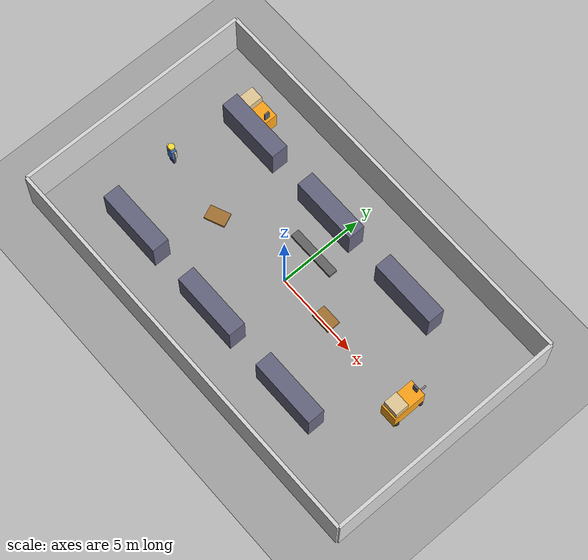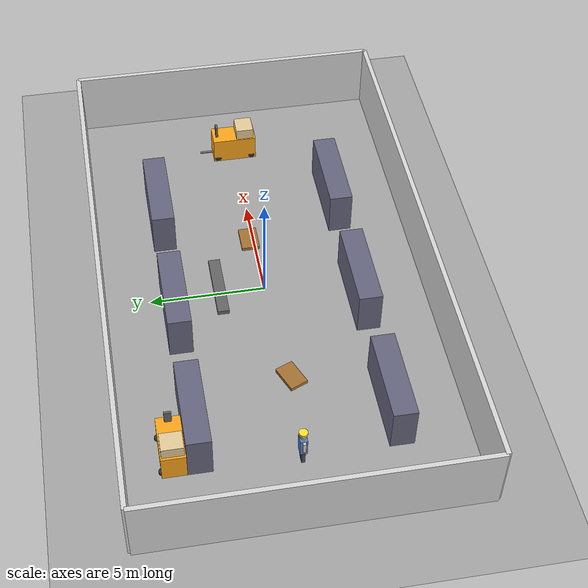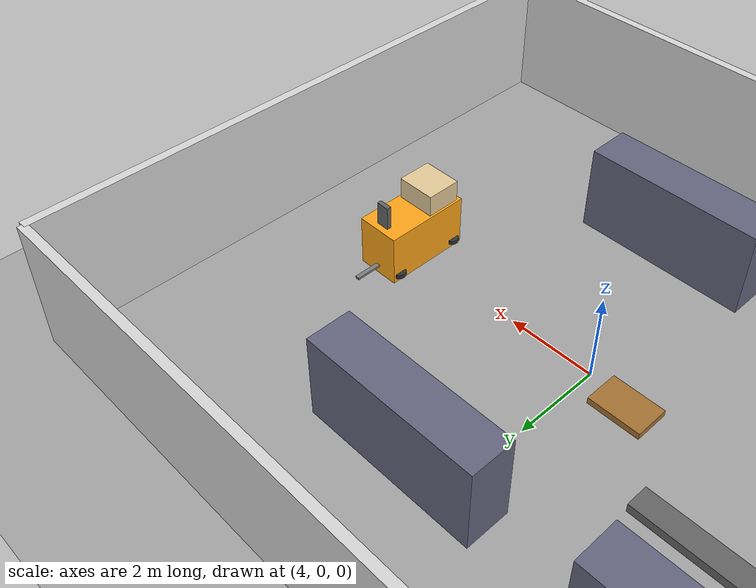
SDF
<?xml version="1.0" ?>
<sdf version="1.10">
  <world name="industrial_warehouse">

    <physics name="default_physics" default="0" type="ode">
      <max_step_size>0.005</max_step_size>
      <real_time_factor>1.0</real_time_factor>
      <real_time_update_rate>200</real_time_update_rate>
    </physics>

    <plugin filename="gz-sim-physics-system"        name="gz::sim::systems::Physics"/>
    <plugin filename="gz-sim-user-commands-system"  name="gz::sim::systems::UserCommands"/>
    <plugin filename="gz-sim-scene-broadcaster-system" name="gz::sim::systems::SceneBroadcaster"/>
    <plugin filename="gz-sim-sensors-system"
            name="gz::sim::systems::Sensors">
      <render_engine>ogre2</render_engine>
    </plugin>
    <plugin filename="gz-sim-imu-system" name="gz::sim::systems::Imu"/>
    <plugin filename="gz-sim-contact-system" name="gz::sim::systems::Contact"/>

    <gravity>0 0 -9.81</gravity>
    <magnetic_field>5.5645e-6 22.8758e-6 -42.3884e-6</magnetic_field>
    <atmosphere type="adiabatic"/>

    <scene>
      <ambient>0.5 0.5 0.5 1</ambient>
      <background>0.7 0.7 0.7 1</background>
      <shadows>true</shadows>
    </scene>

    <light name="ceiling_light_1" type="point">
      <pose>5 -3 4 0 0 0</pose>
      <intensity>0.8</intensity>
      <diffuse>1 1 1 1</diffuse>
      <specular>0.3 0.3 0.3 1</specular>
      <attenuation><range>20</range><constant>0.5</constant><linear>0.01</linear><quadratic>0.001</quadratic></attenuation>
      <cast_shadows>false</cast_shadows>
    </light>

    <light name="ceiling_light_2" type="point">
      <pose>5 3 4 0 0 0</pose>
      <intensity>0.8</intensity>
      <diffuse>1 1 1 1</diffuse>
      <attenuation><range>20</range><constant>0.5</constant><linear>0.01</linear><quadratic>0.001</quadratic></attenuation>
      <cast_shadows>false</cast_shadows>
    </light>

    <light name="ceiling_light_3" type="point">
      <pose>-5 0 4 0 0 0</pose>
      <intensity>0.8</intensity>
      <diffuse>1 1 1 1</diffuse>
      <attenuation><range>20</range><constant>0.5</constant><linear>0.01</linear><quadratic>0.001</quadratic></attenuation>
      <cast_shadows>false</cast_shadows>
    </light>

    <light name="sun" type="directional">
      <pose>0 0 10 0 0 0</pose>
      <cast_shadows>false</cast_shadows>
      <diffuse>0.4 0.4 0.4 1</diffuse>
      <specular>0.1 0.1 0.1 1</specular>
      <direction>-0.5 0.1 -0.9</direction>
    </light>

    <!-- ===========================================================
         FLOOR (concrete)
    =========================================================== -->
    <model name="floor">
      <static>true</static>
      <link name="link">
        <collision name="collision">
          <geometry><plane><normal>0 0 1</normal><size>30 20</size></plane></geometry>
        </collision>
        <visual name="visual">
          <geometry><plane><normal>0 0 1</normal><size>30 20</size></plane></geometry>
          <material>
            <ambient>0.55 0.55 0.55 1</ambient>
            <diffuse>0.65 0.65 0.65 1</diffuse>
            <specular>0.1 0.1 0.1 1</specular>
          </material>
        </visual>
      </link>
    </model>

    <!-- ===========================================================
         OUTER WALLS (rectangular warehouse 24m x 14m)
    =========================================================== -->
    <model name="wall_north">
      <static>true</static>
      <pose>0 7 1.5 0 0 0</pose>
      <link name="link">
        <collision name="c"><geometry><box><size>24 0.2 3</size></box></geometry></collision>
        <visual name="v">
          <geometry><box><size>24 0.2 3</size></box></geometry>
          <material><ambient>0.85 0.85 0.85 1</ambient><diffuse>0.85 0.85 0.85 1</diffuse></material>
        </visual>
      </link>
    </model>

    <model name="wall_south">
      <static>true</static>
      <pose>0 -7 1.5 0 0 0</pose>
      <link name="link">
        <collision name="c"><geometry><box><size>24 0.2 3</size></box></geometry></collision>
        <visual name="v">
          <geometry><box><size>24 0.2 3</size></box></geometry>
          <material><ambient>0.85 0.85 0.85 1</ambient><diffuse>0.85 0.85 0.85 1</diffuse></material>
        </visual>
      </link>
    </model>

    <model name="wall_east">
      <static>true</static>
      <pose>12 0 1.5 0 0 0</pose>
      <link name="link">
        <collision name="c"><geometry><box><size>0.2 14 3</size></box></geometry></collision>
        <visual name="v">
          <geometry><box><size>0.2 14 3</size></box></geometry>
          <material><ambient>0.85 0.85 0.85 1</ambient><diffuse>0.85 0.85 0.85 1</diffuse></material>
        </visual>
      </link>
    </model>

    <model name="wall_west">
      <static>true</static>
      <pose>-12 0 1.5 0 0 0</pose>
      <link name="link">
        <collision name="c"><geometry><box><size>0.2 14 3</size></box></geometry></collision>
        <visual name="v">
          <geometry><box><size>0.2 14 3</size></box></geometry>
          <material><ambient>0.85 0.85 0.85 1</ambient><diffuse>0.85 0.85 0.85 1</diffuse></material>
        </visual>
      </link>
    </model>

    <model name="rack_north_1">
      <static>true</static>
      <pose>-7 4 1.0 0 0 0</pose>
      <link name="link">
        <collision name="c"><geometry><box><size>4 1 2</size></box></geometry></collision>
        <visual name="v">
          <geometry><box><size>4 1 2</size></box></geometry>
          <material><ambient>0.3 0.3 0.4 1</ambient><diffuse>0.4 0.4 0.5 1</diffuse></material>
        </visual>
      </link>
    </model>

    <model name="rack_north_2">
      <static>true</static>
      <pose>-1 4 1.0 0 0 0</pose>
      <link name="link">
        <collision name="c"><geometry><box><size>4 1 2</size></box></geometry></collision>
        <visual name="v">
          <geometry><box><size>4 1 2</size></box></geometry>
          <material><ambient>0.3 0.3 0.4 1</ambient><diffuse>0.4 0.4 0.5 1</diffuse></material>
        </visual>
      </link>
    </model>

    <model name="rack_north_3">
      <static>true</static>
      <pose>5 4 1.0 0 0 0</pose>
      <link name="link">
        <collision name="c"><geometry><box><size>4 1 2</size></box></geometry></collision>
        <visual name="v">
          <geometry><box><size>4 1 2</size></box></geometry>
          <material><ambient>0.3 0.3 0.4 1</ambient><diffuse>0.4 0.4 0.5 1</diffuse></material>
        </visual>
      </link>
    </model>

    <model name="rack_south_1">
      <static>true</static>
      <pose>-7 -4 1.0 0 0 0</pose>
      <link name="link">
        <collision name="c"><geometry><box><size>4 1 2</size></box></geometry></collision>
        <visual name="v">
          <geometry><box><size>4 1 2</size></box></geometry>
          <material><ambient>0.3 0.3 0.4 1</ambient><diffuse>0.4 0.4 0.5 1</diffuse></material>
        </visual>
      </link>
    </model>

    <model name="rack_south_2">
      <static>true</static>
      <pose>-1 -4 1.0 0 0 0</pose>
      <link name="link">
        <collision name="c"><geometry><box><size>4 1 2</size></box></geometry></collision>
        <visual name="v">
          <geometry><box><size>4 1 2</size></box></geometry>
          <material><ambient>0.3 0.3 0.4 1</ambient><diffuse>0.4 0.4 0.5 1</diffuse></material>
        </visual>
      </link>
    </model>

    <model name="rack_south_3">
      <static>true</static>
      <pose>5 -4 1.0 0 0 0</pose>
      <link name="link">
        <collision name="c"><geometry><box><size>4 1 2</size></box></geometry></collision>
        <visual name="v">
          <geometry><box><size>4 1 2</size></box></geometry>
          <material><ambient>0.3 0.3 0.4 1</ambient><diffuse>0.4 0.4 0.5 1</diffuse></material>
        </visual>
      </link>
    </model>

    <!-- ===========================================================
         PALLETS (low static obstacles in the aisle)
    =========================================================== -->
    <model name="pallet_1">
      <static>true</static>
      <pose>3 0.2 0.075 0 0 0</pose>
      <link name="link">
        <collision name="c"><geometry><box><size>1.2 0.8 0.15</size></box></geometry></collision>
        <visual name="v">
          <geometry><box><size>1.2 0.8 0.15</size></box></geometry>
          <material><ambient>0.55 0.35 0.15 1</ambient><diffuse>0.65 0.45 0.20 1</diffuse></material>
        </visual>
      </link>
    </model>

    <model name="pallet_2">
      <static>true</static>
      <pose>-5 -0.3 0.075 0 0 0.4</pose>
      <link name="link">
        <collision name="c"><geometry><box><size>1.2 0.8 0.15</size></box></geometry></collision>
        <visual name="v">
          <geometry><box><size>1.2 0.8 0.15</size></box></geometry>
          <material><ambient>0.55 0.35 0.15 1</ambient><diffuse>0.65 0.45 0.20 1</diffuse></material>
        </visual>
      </link>
    </model>

    <model name="forklift_obstacle">
      <static>true</static>
      <pose>9 0 0.0 0 0 1.5708</pose>

      <!-- Main body -->
      <link name="body">
        <pose>0 0 0.6 0 0 0</pose>
        <collision name="c">
          <geometry><box><size>2.0 1.0 1.2</size></box></geometry>
        </collision>
        <visual name="v">
          <geometry><box><size>2.0 1.0 1.2</size></box></geometry>
          <material><ambient>0.95 0.55 0.05 1</ambient><diffuse>1.0 0.65 0.10 1</diffuse></material>
        </visual>
      </link>

      <!-- Forks -->
      <link name="forks">
        <pose>1.2 0 0.2 0 0 0</pose>
        <collision name="c">
          <geometry><box><size>0.8 0.1 0.05</size></box></geometry>
        </collision>
        <visual name="v">
          <geometry><box><size>0.8 0.1 0.05</size></box></geometry>
          <material><ambient>0.4 0.4 0.4 1</ambient><diffuse>0.5 0.5 0.5 1</diffuse></material>
        </visual>
      </link>

      <!-- Mast -->
      <link name="mast">
        <pose>0.8 0 1.0 0 0 0</pose>
        <collision name="c">
          <geometry><box><size>0.1 0.3 1.5</size></box></geometry>
        </collision>
        <visual name="v">
          <geometry><box><size>0.1 0.3 1.5</size></box></geometry>
          <material><ambient>0.3 0.3 0.3 1</ambient><diffuse>0.4 0.4 0.4 1</diffuse></material>
        </visual>
      </link>

      <!-- Cabin/Overhead guard -->
      <link name="cabin">
        <pose>-0.5 0 1.4 0 0 0</pose>
        <collision name="c">
          <geometry><box><size>0.8 0.9 0.6</size></box></geometry>
        </collision>
        <visual name="v">
          <geometry><box><size>0.8 0.9 0.6</size></box></geometry>
          <material><ambient>0.8 0.7 0.5 1</ambient><diffuse>0.9 0.8 0.6 1</diffuse></material>
        </visual>
      </link>

      <!-- Wheels (visual only) -->
      <link name="front_left_wheel">
        <pose>0.8 0.45 0.15 0 0 0</pose>
        <visual name="v">
          <geometry><cylinder><radius>0.15</radius><length>0.1</length></cylinder></geometry>
          <material><ambient>0.1 0.1 0.1 1</ambient><diffuse>0.2 0.2 0.2 1</diffuse></material>
        </visual>
      </link>

      <link name="front_right_wheel">
        <pose>0.8 -0.45 0.15 0 0 0</pose>
        <visual name="v">
          <geometry><cylinder><radius>0.15</radius><length>0.1</length></cylinder></geometry>
          <material><ambient>0.1 0.1 0.1 1</ambient><diffuse>0.2 0.2 0.2 1</diffuse></material>
        </visual>
      </link>

      <link name="rear_left_wheel">
        <pose>-0.8 0.45 0.15 0 0 0</pose>
        <visual name="v">
          <geometry><cylinder><radius>0.15</radius><length>0.1</length></cylinder></geometry>
          <material><ambient>0.1 0.1 0.1 1</ambient><diffuse>0.2 0.2 0.2 1</diffuse></material>
        </visual>
      </link>

      <link name="rear_right_wheel">
        <pose>-0.8 -0.45 0.15 0 0 0</pose>
        <visual name="v">
          <geometry><cylinder><radius>0.15</radius><length>0.1</length></cylinder></geometry>
          <material><ambient>0.1 0.1 0.1 1</ambient><diffuse>0.2 0.2 0.2 1</diffuse></material>
        </visual>
      </link>
    </model>

    <model name="warehouse_worker">
      <pose>-9 0 0.0 0 0 0</pose>
      <static>true</static>

      <!-- Torso -->
      <link name="torso">
        <pose>0 0 1.0 0 0 0</pose>
        <collision name="c">
          <geometry><box><size>0.4 0.3 0.8</size></box></geometry>
        </collision>
        <visual name="v">
          <geometry><box><size>0.4 0.3 0.8</size></box></geometry>
          <material><ambient>0.2 0.4 0.7 1</ambient><diffuse>0.3 0.5 0.8 1</diffuse></material>
        </visual>
      </link>

      <!-- Head -->
      <link name="head">
        <pose>0 0 1.55 0 0 0</pose>
        <collision name="c">
          <geometry><sphere><radius>0.15</radius></sphere></geometry>
        </collision>
        <visual name="v">
          <geometry><sphere><radius>0.15</radius></sphere></geometry>
          <material><ambient>0.8 0.7 0.6 1</ambient><diffuse>0.9 0.8 0.7 1</diffuse></material>
        </visual>
      </link>

      <!-- Left Leg -->
      <link name="left_leg">
        <pose>-0.1 0 0.4 0 0 0</pose>
        <collision name="c">
          <geometry><box><size>0.15 0.15 0.8</size></box></geometry>
        </collision>
        <visual name="v">
          <geometry><box><size>0.15 0.15 0.8</size></box></geometry>
          <material><ambient>0.2 0.2 0.3 1</ambient><diffuse>0.3 0.3 0.4 1</diffuse></material>
        </visual>
      </link>

      <!-- Right Leg -->
      <link name="right_leg">
        <pose>0.1 0 0.4 0 0 0</pose>
        <collision name="c">
          <geometry><box><size>0.15 0.15 0.8</size></box></geometry>
        </collision>
        <visual name="v">
          <geometry><box><size>0.15 0.15 0.8</size></box></geometry>
          <material><ambient>0.2 0.2 0.3 1</ambient><diffuse>0.3 0.3 0.4 1</diffuse></material>
        </visual>
      </link>

      <!-- Left Arm -->
      <link name="left_arm">
        <pose>-0.3 0 1.2 0 0 0</pose>
        <collision name="c">
          <geometry><box><size>0.12 0.12 0.5</size></box></geometry>
        </collision>
        <visual name="v">
          <geometry><box><size>0.12 0.12 0.5</size></box></geometry>
          <material><ambient>0.8 0.7 0.6 1</ambient><diffuse>0.9 0.8 0.7 1</diffuse></material>
        </visual>
      </link>

      <!-- Right Arm -->
      <link name="right_arm">
        <pose>0.3 0 1.2 0 0 0</pose>
        <collision name="c">
          <geometry><box><size>0.12 0.12 0.5</size></box></geometry>
        </collision>
        <visual name="v">
          <geometry><box><size>0.12 0.12 0.5</size></box></geometry>
          <material><ambient>0.8 0.7 0.6 1</ambient><diffuse>0.9 0.8 0.7 1</diffuse></material>
        </visual>
      </link>

      <!-- Hard hat (safety equipment) -->
      <link name="hard_hat">
        <pose>0 0 1.72 0 0 0</pose>
        <collision name="c">
          <geometry><cylinder><radius>0.18</radius><length>0.12</length></cylinder></geometry>
        </collision>
        <visual name="v">
          <geometry><cylinder><radius>0.18</radius><length>0.12</length></cylinder></geometry>
          <material><ambient>1.0 0.8 0.1 1</ambient><diffuse>1.0 0.9 0.2 1</diffuse></material>
        </visual>
      </link>
    </model>

    <model name="conveyor_belt">
      <pose>0 2 0.5 0 0 0</pose>
      <static>true</static>
      <link name="link">
        <inertial><mass>50</mass></inertial>
        <collision name="c"><geometry><box><size>3 0.5 0.2</size></box></geometry></collision>
        <visual name="v">
          <geometry><box><size>3 0.5 0.2</size></box></geometry>
          <material><ambient>0.3 0.3 0.3 1</ambient><diffuse>0.4 0.4 0.4 1</diffuse></material>
        </visual>
      </link>
      <!-- Animation system plugin not available in current Gazebo version -->
    </model>

    <model name="moving_forklift">
      <pose>-8 5 0.0 0 0 0</pose>
      <static>true</static>

      <!-- Main body -->
      <link name="body">
        <pose>0 0 0.6 0 0 0</pose>
        <inertial><mass>200</mass></inertial>
        <collision name="c">
          <geometry><box><size>2.0 1.0 1.2</size></box></geometry>
        </collision>
        <visual name="v">
          <geometry><box><size>2.0 1.0 1.2</size></box></geometry>
          <material><ambient>0.95 0.55 0.05 1</ambient><diffuse>1.0 0.65 0.10 1</diffuse></material>
        </visual>
      </link>

      <!-- Forks -->
      <link name="forks">
        <pose>1.2 0 0.2 0 0 0</pose>
        <collision name="c">
          <geometry><box><size>0.8 0.1 0.05</size></box></geometry>
        </collision>
        <visual name="v">
          <geometry><box><size>0.8 0.1 0.05</size></box></geometry>
          <material><ambient>0.4 0.4 0.4 1</ambient><diffuse>0.5 0.5 0.5 1</diffuse></material>
        </visual>
      </link>

      <!-- Mast -->
      <link name="mast">
        <pose>0.8 0 1.0 0 0 0</pose>
        <collision name="c">
          <geometry><box><size>0.1 0.3 1.5</size></box></geometry>
        </collision>
        <visual name="v">
          <geometry><box><size>0.1 0.3 1.5</size></box></geometry>
          <material><ambient>0.3 0.3 0.3 1</ambient><diffuse>0.4 0.4 0.4 1</diffuse></material>
        </visual>
      </link>

      <!-- Cabin/Overhead guard -->
      <link name="cabin">
        <pose>-0.5 0 1.4 0 0 0</pose>
        <collision name="c">
          <geometry><box><size>0.8 0.9 0.6</size></box></geometry>
        </collision>
        <visual name="v">
          <geometry><box><size>0.8 0.9 0.6</size></box></geometry>
          <material><ambient>0.8 0.7 0.5 1</ambient><diffuse>0.9 0.8 0.6 1</diffuse></material>
        </visual>
      </link>

      <!-- Wheels (visual only) -->
      <link name="front_left_wheel">
        <pose>0.8 0.45 0.15 0 0 0</pose>
        <visual name="v">
          <geometry><cylinder><radius>0.15</radius><length>0.1</length></cylinder></geometry>
          <material><ambient>0.1 0.1 0.1 1</ambient><diffuse>0.2 0.2 0.2 1</diffuse></material>
        </visual>
      </link>

      <link name="front_right_wheel">
        <pose>0.8 -0.45 0.15 0 0 0</pose>
        <visual name="v">
          <geometry><cylinder><radius>0.15</radius><length>0.1</length></cylinder></geometry>
          <material><ambient>0.1 0.1 0.1 1</ambient><diffuse>0.2 0.2 0.2 1</diffuse></material>
        </visual>
      </link>

      <link name="rear_left_wheel">
        <pose>-0.8 0.45 0.15 0 0 0</pose>
        <visual name="v">
          <geometry><cylinder><radius>0.15</radius><length>0.1</length></cylinder></geometry>
          <material><ambient>0.1 0.1 0.1 1</ambient><diffuse>0.2 0.2 0.2 1</diffuse></material>
        </visual>
      </link>

      <link name="rear_right_wheel">
        <pose>-0.8 -0.45 0.15 0 0 0</pose>
        <visual name="v">
          <geometry><cylinder><radius>0.15</radius><length>0.1</length></cylinder></geometry>
          <material><ambient>0.1 0.1 0.1 1</ambient><diffuse>0.2 0.2 0.2 1</diffuse></material>
        </visual>
      </link>

      <!-- Animation system plugin not available in current Gazebo version -->
    </model>

    <!-- ===========================================================
         AGV ROBOT (spawned by launch file, not included here)
    =========================================================== -->

  </world>
</sdf>
